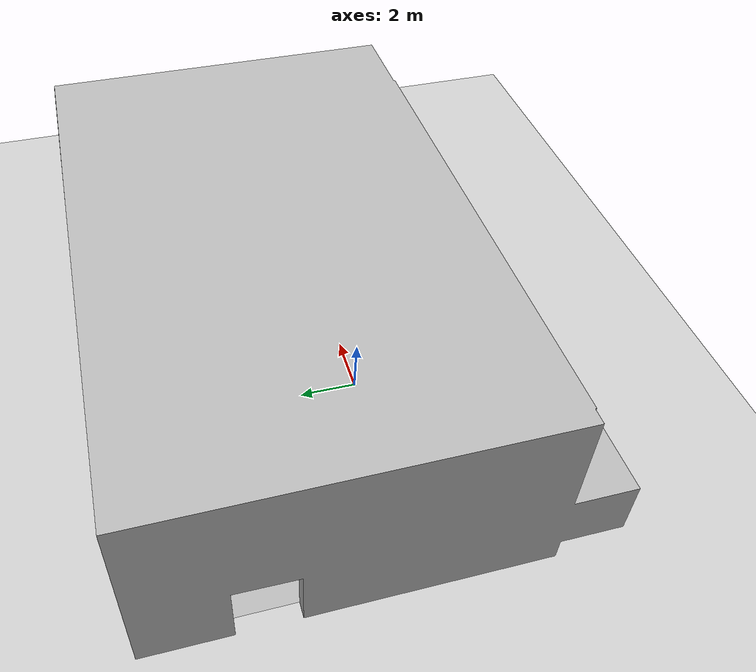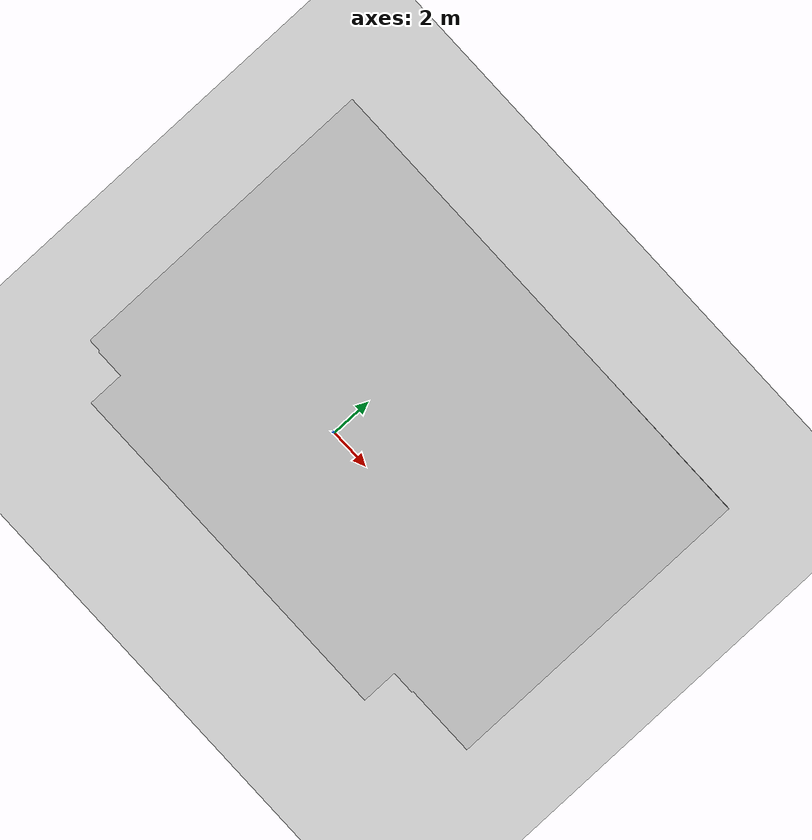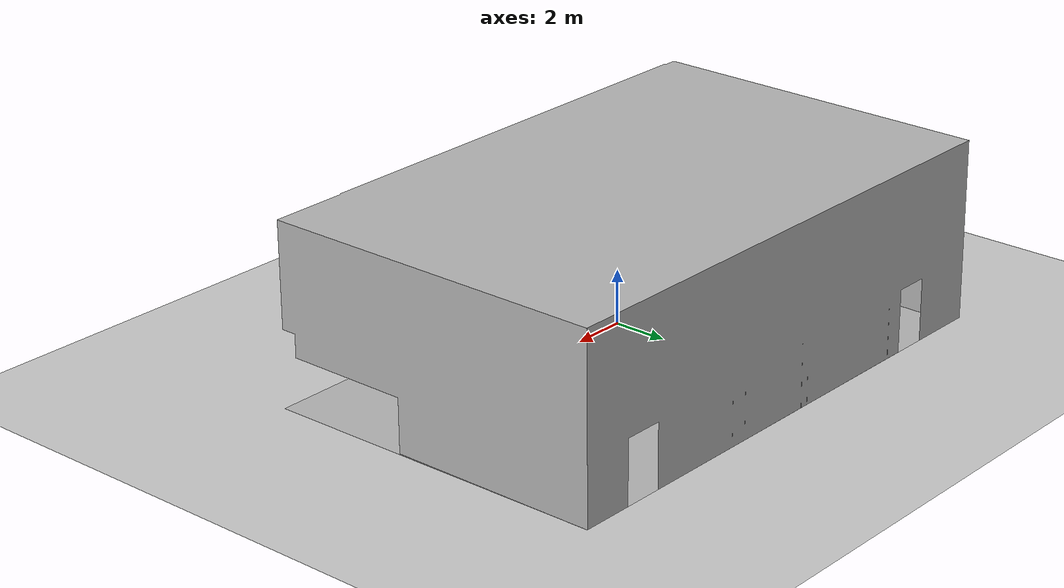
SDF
<?xml version="1.0" ?>
<sdf version="1.5">

  <world name="bauzil_world">
    <physics type="ode">
      <gravity>0 0 -9.81</gravity>
      <ode>
        <solver>
          <type>quick</type>
          <iters>50</iters>
          <sor>1.4</sor>
        </solver>
        <constraints>
          <cfm>0.0</cfm>
          <erp>0.2</erp>
          <contact_max_correcting_vel>100.0</contact_max_correcting_vel>
          <contact_surface_layer>0.0</contact_surface_layer>
        </constraints>
      </ode>
      <real_time_update_rate>1000</real_time_update_rate>
      <max_step_size>0.001</max_step_size>
    </physics>

      <!-- A global light source -->
      <include>
        <uri>model://sun</uri>
      </include>

      <!-- A ground plane -->
      <include>
        <uri>model://ground_plane</uri>
      </include>

      <include>
        <uri>model://bauzil_room</uri>
      </include>
  </world>
</sdf>

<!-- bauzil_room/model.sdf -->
<sdf version="1.5">
  <model name="bauzil_room">
    <pose>0 0 0  0 0 0</pose>
    <static>true</static>
    <link name="body">
      <collision name="bauzil_collision">
        <geometry>
          <mesh><uri>model://bauzil_room/meshes/bauzil_room.stl</uri></mesh>
        </geometry>
      </collision>
      <visual name="bauzil_visual">
        <geometry>
          <mesh><uri>model://bauzil_room/meshes/bauzil_room.stl</uri></mesh>
        </geometry>
      </visual>
    </link>
  </model>
</sdf>
